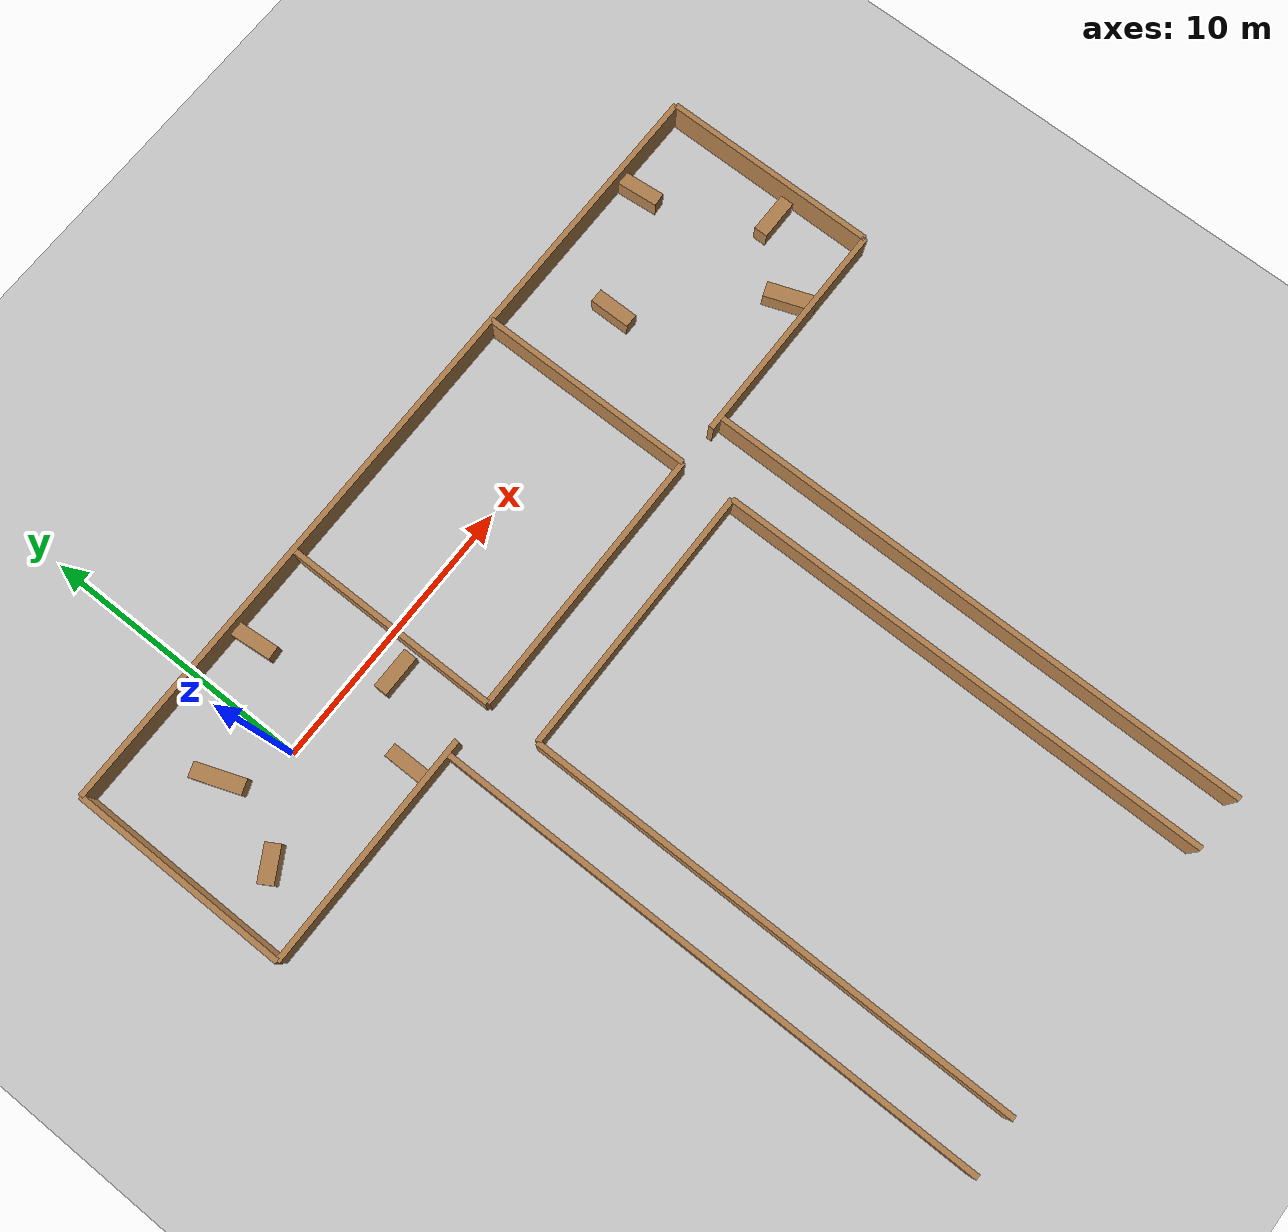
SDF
<?xml version="1.0"?>
<sdf version="1.4">
  <world name="default">
    <include>
      <uri>model://ground_plane</uri>
    </include>
    <include>
      <uri>model://sun</uri>
    </include>

    <model name="box_1_model">
      <pose>2.0   -3.2    0.35  0 0 0</pose>
      <static>true</static>
      <link name="box_1_model">
        <collision name="collision">
          <geometry>
             <box>
              <size>0.5 1.5 0.7</size>
            </box>
          </geometry>
        </collision>
        <visual name="visual">
          <geometry>
             <box>
              <size>0.5 1.5 0.7</size>
            </box>
          </geometry>
           <material><script>
            <uri>file://media/materials/scripts/gazebo.material</uri>
            <name>Gazebo/Wood</name>
          </script></material>
        </visual>
      </link>
    </model>

    <model name="box_2_model">
      <pose>4.0   -1.0    0.35  0 0 0</pose>
      <static>true</static>
      <link name="box_2_model">
        <collision name="collision">
          <geometry>
             <box>
              <size>1.5 0.5 0.7</size>
            </box>
          </geometry>
        </collision>
        <visual name="visual">
          <geometry>
             <box>
              <size>1.5 0.5 0.7</size>
            </box>
          </geometry>
           <material><script>
            <uri>file://media/materials/scripts/gazebo.material</uri>
            <name>Gazebo/Wood</name>
          </script></material>
        </visual>
      </link>
    </model>

    <model name="box_3_model">
      <pose>2.0   3.2    0.35  0 0 0.0873</pose>
      <static>true</static>
      <link name="box_3_model">
        <collision name="collision">
          <geometry>
             <box>
              <size>0.5 1.55 0.7</size>
            </box>
          </geometry>
        </collision>
        <visual name="visual">
          <geometry>
             <box>
              <size>0.5 1.55 0.7</size>
            </box>
          </geometry>
           <material><script>
            <uri>file://media/materials/scripts/gazebo.material</uri>
            <name>Gazebo/Wood</name>
          </script></material>
        </visual>
      </link>
    </model>

    <model name="box_4_model">
      <pose>-3.0   -1.8    0.35  0 0 0.5236</pose>
      <static>true</static>
      <link name="box_4_model">
        <collision name="collision">
          <geometry>
             <box>
              <size>1.3 0.55 0.7</size>
            </box>
          </geometry>
        </collision>
        <visual name="visual">
          <geometry>
             <box>
              <size>1.3 0.55 0.7</size>
            </box>
          </geometry>
           <material><script>
            <uri>file://media/materials/scripts/gazebo.material</uri>
            <name>Gazebo/Wood</name>
          </script></material>
        </visual>
      </link>
    </model>

    <model name="box_5_model">
      <pose>-2.0   1.2    0.35  0 0 1.92</pose>
      <static>true</static>
      <link name="box_5_model">
        <collision name="collision">
          <geometry>
             <box>
              <size>1.8 0.55 0.7</size>
            </box>
          </geometry>
        </collision>
        <visual name="visual">
          <geometry>
             <box>
              <size>1.8 0.55 0.7</size>
            </box>
          </geometry>
           <material><script>
            <uri>file://media/materials/scripts/gazebo.material</uri>
            <name>Gazebo/Wood</name>
          </script></material>
        </visual>
      </link>
    </model>

    <model name="box_6_model">
      <pose>18.0   1.2   0.35  0 0 0.0</pose>
      <static>true</static>
      <link name="box_6_model">
        <collision name="collision">
          <geometry>
             <box>
              <size>0.5 1.5 0.7</size>
            </box>
          </geometry>
        </collision>
        <visual name="visual">
          <geometry>
             <box>
              <size>0.5 1.5 0.7</size>
            </box>
          </geometry>
           <material><script>
            <uri>file://media/materials/scripts/gazebo.material</uri>
            <name>Gazebo/Wood</name>
          </script></material>
        </visual>
      </link>
    </model>

    <model name="box_7_model">
      <pose>24.0   -1.0    0.35  0 0 0.0</pose>
      <static>true</static>
      <link name="box_7_model">
        <collision name="collision">
          <geometry>
             <box>
              <size>1.5 0.5 0.7</size>
            </box>
          </geometry>
        </collision>
        <visual name="visual">
          <geometry>
             <box>
              <size>1.5 0.5 0.7</size>
            </box>
          </geometry>
           <material><script>
            <uri>file://media/materials/scripts/gazebo.material</uri>
            <name>Gazebo/Wood</name>
          </script></material>
        </visual>
      </link>
    </model>

      <model name="box_8_model">
      <pose>22.0   3.2    0.35  0 0 0.0873</pose>
      <static>true</static>
      <link name="box_8_model">
        <collision name="collision">
          <geometry>
             <box>
              <size>0.5 1.55 0.7</size>
            </box>
          </geometry>
        </collision>
        <visual name="visual">
          <geometry>
             <box>
              <size>0.5 1.55 0.7</size>
            </box>
          </geometry>
           <material><script>
            <uri>file://media/materials/scripts/gazebo.material</uri>
            <name>Gazebo/Wood</name>
          </script></material>
        </visual>
      </link>
    </model>

    <model name="box_9_model">
      <pose>22.0   -3.2    0.35  0 0 1.92</pose>
      <static>true</static>
      <link name="box_9_model">
        <collision name="collision">
          <geometry>
             <box>
              <size>1.75 0.55 0.7</size>
            </box>
          </geometry>
        </collision>
        <visual name="visual">
          <geometry>
             <box>
              <size>1.8 0.55 0.7</size>
            </box>
          </geometry>
           <material><script>
            <uri>file://media/materials/scripts/gazebo.material</uri>
            <name>Gazebo/Wood</name>
          </script></material>
        </visual>
      </link>
    </model>

    <model name="wall_1_model">
      <pose>10.0   4.0   0.6  0 0 0.0</pose>
      <static>true</static>
      <link name="wall_1_model">
        <collision name="collision">
          <geometry>
             <box>
              <size>29.0 0.2 1.2</size>
            </box>
          </geometry>
        </collision>
        <visual name="visual">
          <geometry>
             <box>
              <size>30.0 0.2 1.2</size>
            </box>
          </geometry>
           <material><script>
            <uri>file://media/materials/scripts/gazebo.material</uri>
            <name>Gazebo/Wood</name>
          </script></material>
        </visual>
      </link>
    </model>

    <model name="wall_2_model">
      <pose>-5.0   0.0   0.6  0 0 0.0</pose>
      <static>true</static>
      <link name="wall_2_model">
        <collision name="collision">
          <geometry>
             <box>
              <size>0.2 7.90 1.2</size>
            </box>
          </geometry>
        </collision>
        <visual name="visual">
          <geometry>
             <box>
              <size>0.2 8.0 1.2</size>
            </box>
          </geometry>
           <material><script>
            <uri>file://media/materials/scripts/gazebo.material</uri>
            <name>Gazebo/Wood</name>
          </script></material>
        </visual>
      </link>
    </model>

    <model name="wall_3_model">
      <pose>5.0   0.0   0.6  0 0 0.0</pose>
      <static>true</static>
      <link name="wall_3_model">
        <collision name="collision">
          <geometry>
             <box>
              <size>0.2 7.9 1.2</size>
            </box>
          </geometry>
        </collision>
        <visual name="visual">
          <geometry>
             <box>
              <size>0.2 8.0 1.2</size>
            </box>
          </geometry>
           <material><script>
            <uri>file://media/materials/scripts/gazebo.material</uri>
            <name>Gazebo/Wood</name>
          </script></material>
        </visual>
      </link>
    </model>

    <model name="wall_4_model">
      <pose>-0.75   -4.0   0.6  0 0 0.0</pose>
      <static>true</static>
      <link name="wall_4_model">
        <collision name="collision">
          <geometry>
             <box>
              <size>8.2 0.2 1.2</size>
            </box>
          </geometry>
        </collision>
        <visual name="visual">
          <geometry>
             <box>
              <size>8.5 0.2 1.2</size>
            </box>
          </geometry>
           <material><script>
            <uri>file://media/materials/scripts/gazebo.material</uri>
            <name>Gazebo/Wood</name>
          </script></material>
        </visual>
      </link>
    </model>

    <model name="wall_5_model">
      <pose>3.0   -14.1   0.6  0 0 0.0</pose>
      <static>true</static>
      <link name="wall_5_model">
        <collision name="collision">
          <geometry>
             <box>
              <size>0.2 19.0 1.2</size>
            </box>
          </geometry>
        </collision>
        <visual name="visual">
          <geometry>
             <box>
              <size>0.2 20.0 1.2</size>
            </box>
          </geometry>
           <material><script>
            <uri>file://media/materials/scripts/gazebo.material</uri>
            <name>Gazebo/Wood</name>
          </script></material>
        </visual>
      </link>
    </model>

    <model name="wall_6_model">
      <pose>5.0   -15.0   0.6  0 0 0.0</pose>
      <static>true</static>
      <link name="wall_6_model">
        <collision name="collision">
          <geometry>
             <box>
              <size>0.2 17.0 1.2</size>
            </box>
          </geometry>
        </collision>
        <visual name="visual">
          <geometry>
             <box>
              <size>0.2 18.0 1.2</size>
            </box>
          </geometry>
           <material><script>
            <uri>file://media/materials/scripts/gazebo.material</uri>
            <name>Gazebo/Wood</name>
          </script></material>
        </visual>
      </link>
    </model>

    <model name="wall_7_model">
      <pose>15.0   -15.0   0.6  0 0 0.0</pose>
      <static>true</static>
      <link name="wall_7_model">
        <collision name="collision">
          <geometry>
             <box>
              <size>0.2 17.0 1.2</size>
            </box>
          </geometry>
        </collision>
        <visual name="visual">
          <geometry>
             <box>
              <size>0.2 18.0 1.2</size>
            </box>
          </geometry>
           <material><script>
            <uri>file://media/materials/scripts/gazebo.material</uri>
            <name>Gazebo/Wood</name>
          </script></material>
        </visual>
      </link>
    </model>

    <model name="wall_8_model">
      <pose>10.0   -6.0   0.6   0 0 0.0</pose>
      <static>true</static>
      <link name="wall_8_model">
        <collision name="collision">
          <geometry>
             <box>
              <size>9.4 0.2 1.2</size>
            </box>
          </geometry>
        </collision>
        <visual name="visual">
          <geometry>
             <box>
              <size>10.0 0.2 1.2</size>
            </box>
          </geometry>
           <material><script>
            <uri>file://media/materials/scripts/gazebo.material</uri>
            <name>Gazebo/Wood</name>
          </script></material>
        </visual>
      </link>
    </model>

    <model name="wall_9_model">
      <pose>10.0   -4.0  0.6   0 0 0.0</pose>
      <static>true</static>
      <link name="wall_9_model">
        <collision name="collision">
          <geometry>
             <box>
              <size>9.90 0.2 1.2</size>
            </box>
          </geometry>
        </collision>
        <visual name="visual">
          <geometry>
             <box>
              <size>10.0 0.2 1.2</size>
            </box>
          </geometry>
           <material><script>
            <uri>file://media/materials/scripts/gazebo.material</uri>
            <name>Gazebo/Wood</name>
          </script></material>
        </visual>
      </link>
    </model>

    <model name="wall_10_model">
      <pose>17.0   -14.1   0.6   0 0 0.0</pose>
      <static>true</static>
      <link name="wall_10_model">
        <collision name="collision">
          <geometry>
             <box>
              <size>0.2 19.0 1.2</size>
            </box>
          </geometry>
        </collision>
        <visual name="visual">
          <geometry>
             <box>
              <size>0.2 20.0 1.2</size>
            </box>
          </geometry>
           <material><script>
            <uri>file://media/materials/scripts/gazebo.material</uri>
            <name>Gazebo/Wood</name>
          </script></material>
        </visual>
      </link>
    </model>

    <model name="wall_11_model">
      <pose>15.0   0.0   0.6   0 0 0.0</pose>
      <static>true</static>
      <link name="wall_11_model">
        <collision name="collision">
          <geometry>
             <box>
              <size>0.2 7.9 1.2</size>
            </box>
          </geometry>
        </collision>
        <visual name="visual">
          <geometry>
             <box>
              <size>0.2 8.0 1.2</size>
            </box>
          </geometry>
           <material><script>
            <uri>file://media/materials/scripts/gazebo.material</uri>
            <name>Gazebo/Wood</name>
          </script></material>
        </visual>
      </link>
    </model>

    <model name="wall_12_model">
      <pose>25.0   0.0   0.6  0 0 0.0</pose>
      <static>true</static>
      <link name="wall_12_model">
        <collision name="collision">
          <geometry>
             <box>
              <size>0.2 7.5 1.2</size>
            </box>
          </geometry>
        </collision>
        <visual name="visual">
          <geometry>
             <box>
              <size>0.2 8.0 1.2</size>
            </box>
          </geometry>
           <material><script>
            <uri>file://media/materials/scripts/gazebo.material</uri>
            <name>Gazebo/Wood</name>
          </script></material>
        </visual>
      </link>
    </model>

    <model name="wall_13_model">
      <pose>20.75   -4.0   0.6  0 0 0.0</pose>
      <static>true</static>
      <link name="wall_13_model">
        <collision name="collision">
          <geometry>
             <box>
              <size>8.2 0.2 1.2</size>
            </box>
          </geometry>
        </collision>
        <visual name="visual">
          <geometry>
             <box>
              <size>8.5 0.2 1.2</size>
            </box>
          </geometry>
           <material><script>
            <uri>file://media/materials/scripts/gazebo.material</uri>
            <name>Gazebo/Wood</name>
          </script></material>
        </visual>
      </link>
    </model>
  </world>
</sdf>
